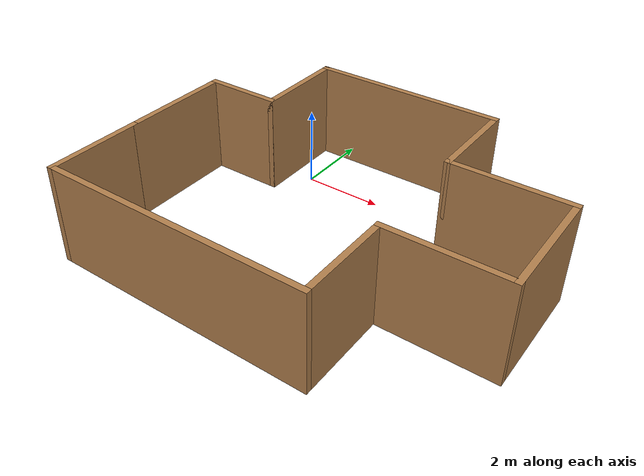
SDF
<?xml version='1.0'?>
<sdf version='1.7'>
  <model name='world_2'>
    <pose>2.28916 -2.23722 0 0 -0 0</pose>
    <link name='Wall_0'>
      <collision name='Wall_0_Collision'>
        <geometry>
          <box>
            <size>3 0.15 2.5</size>
          </box>
        </geometry>
        <pose>0 0 1.25 0 -0 0</pose>
      </collision>
      <visual name='Wall_0_Visual'>
        <pose>0 0 1.25 0 -0 0</pose>
        <geometry>
          <box>
            <size>3 0.15 2.5</size>
          </box>
        </geometry>
        <material>
          <script>
            <uri>file://media/materials/scripts/gazebo.material</uri>
            <name>Gazebo/Wood</name>
          </script>
          <ambient>1 1 1 1</ambient>
        </material>
        <meta>
          <layer>0</layer>
        </meta>
      </visual>
      <pose>-4.775 0 0 0 -0 1.5708</pose>
    </link>
    <link name='Wall_1'>
      <collision name='Wall_1_Collision'>
        <geometry>
          <box>
            <size>2 0.15 2.5</size>
          </box>
        </geometry>
        <pose>0 0 1.25 0 -0 0</pose>
      </collision>
      <visual name='Wall_1_Visual'>
        <pose>0 0 1.25 0 -0 0</pose>
        <geometry>
          <box>
            <size>2 0.15 2.5</size>
          </box>
        </geometry>
        <material>
          <script>
            <uri>file://media/materials/scripts/gazebo.material</uri>
            <name>Gazebo/Wood</name>
          </script>
          <ambient>1 1 1 1</ambient>
        </material>
        <meta>
          <layer>0</layer>
        </meta>
      </visual>
      <pose>-3.85 1.425 0 0 -0 0</pose>
    </link>
    <link name='Wall_10'>
      <collision name='Wall_10_Collision'>
        <geometry>
          <box>
            <size>6.75 0.15 2.5</size>
          </box>
        </geometry>
        <pose>0 0 1.25 0 -0 0</pose>
      </collision>
      <visual name='Wall_10_Visual'>
        <pose>0 0 1.25 0 -0 0</pose>
        <geometry>
          <box>
            <size>6.75 0.15 2.5</size>
          </box>
        </geometry>
        <material>
          <script>
            <uri>file://media/materials/scripts/gazebo.material</uri>
            <name>Gazebo/Wood</name>
          </script>
          <ambient>1 1 1 1</ambient>
        </material>
        <meta>
          <layer>0</layer>
        </meta>
      </visual>
      <pose>-1.375 -3.775 0 0 -0 3.14159</pose>
    </link>
    <link name='Wall_12'>
      <collision name='Wall_12_Collision'>
        <geometry>
          <box>
            <size>2.5 0.15 2.5</size>
          </box>
        </geometry>
        <pose>0 0 1.25 0 -0 0</pose>
      </collision>
      <visual name='Wall_12_Visual'>
        <pose>0 0 1.25 0 -0 0</pose>
        <geometry>
          <box>
            <size>2.5 0.15 2.5</size>
          </box>
        </geometry>
        <material>
          <script>
            <uri>file://media/materials/scripts/gazebo.material</uri>
            <name>Gazebo/Wood</name>
          </script>
          <ambient>1 1 1 1</ambient>
        </material>
        <meta>
          <layer>0</layer>
        </meta>
      </visual>
      <pose>-4.775 -2.6 0 0 -0 -1.5708</pose>
    </link>
    <link name='Wall_2'>
      <collision name='Wall_2_Collision'>
        <geometry>
          <box>
            <size>2.5 0.15 2.5</size>
          </box>
        </geometry>
        <pose>0 0 1.25 0 -0 0</pose>
      </collision>
      <visual name='Wall_2_Visual'>
        <pose>0 0 1.25 0 -0 0</pose>
        <geometry>
          <box>
            <size>2.5 0.15 2.5</size>
          </box>
        </geometry>
        <material>
          <script>
            <uri>file://media/materials/scripts/gazebo.material</uri>
            <name>Gazebo/Wood</name>
          </script>
          <ambient>1 1 1 1</ambient>
        </material>
        <meta>
          <layer>0</layer>
        </meta>
      </visual>
      <pose>-2.925 2.6 0 0 -0 1.5708</pose>
    </link>
    <link name='Wall_3'>
      <collision name='Wall_3_Collision'>
        <geometry>
          <box>
            <size>5 0.15 2.5</size>
          </box>
        </geometry>
        <pose>0 0 1.25 0 -0 0</pose>
      </collision>
      <visual name='Wall_3_Visual'>
        <pose>0 0 1.25 0 -0 0</pose>
        <geometry>
          <box>
            <size>5 0.15 2.5</size>
          </box>
        </geometry>
        <material>
          <script>
            <uri>file://media/materials/scripts/gazebo.material</uri>
            <name>Gazebo/Wood</name>
          </script>
          <ambient>1 1 1 1</ambient>
        </material>
        <meta>
          <layer>0</layer>
        </meta>
      </visual>
      <pose>-0.5 3.775 0 0 -0 0</pose>
    </link>
    <link name='Wall_4'>
      <collision name='Wall_4_Collision'>
        <geometry>
          <box>
            <size>2.5 0.15 2.5</size>
          </box>
        </geometry>
        <pose>0 0 1.25 0 -0 0</pose>
      </collision>
      <visual name='Wall_4_Visual'>
        <pose>0 0 1.25 0 -0 0</pose>
        <geometry>
          <box>
            <size>2.5 0.15 2.5</size>
          </box>
        </geometry>
        <material>
          <script>
            <uri>file://media/materials/scripts/gazebo.material</uri>
            <name>Gazebo/Wood</name>
          </script>
          <ambient>1 1 1 1</ambient>
        </material>
        <meta>
          <layer>0</layer>
        </meta>
      </visual>
      <pose>1.925 2.6 0 0 -0 -1.5708</pose>
    </link>
    <link name='Wall_5'>
      <collision name='Wall_5_Collision'>
        <geometry>
          <box>
            <size>3 0.15 2.5</size>
          </box>
        </geometry>
        <pose>0 0 1.25 0 -0 0</pose>
      </collision>
      <visual name='Wall_5_Visual'>
        <pose>0 0 1.25 0 -0 0</pose>
        <geometry>
          <box>
            <size>3 0.15 2.5</size>
          </box>
        </geometry>
        <material>
          <script>
            <uri>file://media/materials/scripts/gazebo.material</uri>
            <name>Gazebo/Wood</name>
          </script>
          <ambient>1 1 1 1</ambient>
        </material>
        <meta>
          <layer>0</layer>
        </meta>
      </visual>
      <pose>3.35 1.425 0 0 -0 0</pose>
    </link>
    <link name='Wall_6'>
      <collision name='Wall_6_Collision'>
        <geometry>
          <box>
            <size>3 0.15 2.5</size>
          </box>
        </geometry>
        <pose>0 0 1.25 0 -0 0</pose>
      </collision>
      <visual name='Wall_6_Visual'>
        <pose>0 0 1.25 0 -0 0</pose>
        <geometry>
          <box>
            <size>3 0.15 2.5</size>
          </box>
        </geometry>
        <material>
          <script>
            <uri>file://media/materials/scripts/gazebo.material</uri>
            <name>Gazebo/Wood</name>
          </script>
          <ambient>1 1 1 1</ambient>
        </material>
        <meta>
          <layer>0</layer>
        </meta>
      </visual>
      <pose>4.775 0 0 0 -0 -1.5708</pose>
    </link>
    <link name='Wall_8'>
      <collision name='Wall_8_Collision'>
        <geometry>
          <box>
            <size>3 0.15 2.5</size>
          </box>
        </geometry>
        <pose>0 0 1.25 0 -0 0</pose>
      </collision>
      <visual name='Wall_8_Visual'>
        <pose>0 0 1.25 0 -0 0</pose>
        <geometry>
          <box>
            <size>3 0.15 2.5</size>
          </box>
        </geometry>
        <material>
          <script>
            <uri>file://media/materials/scripts/gazebo.material</uri>
            <name>Gazebo/Wood</name>
          </script>
          <ambient>1 1 1 1</ambient>
        </material>
        <meta>
          <layer>0</layer>
        </meta>
      </visual>
      <pose>3.35 -1.425 0 0 -0 3.14159</pose>
    </link>
    <link name='Wall_9'>
      <collision name='Wall_9_Collision'>
        <geometry>
          <box>
            <size>2.5 0.15 2.5</size>
          </box>
        </geometry>
        <pose>0 0 1.25 0 -0 0</pose>
      </collision>
      <visual name='Wall_9_Visual'>
        <pose>0 0 1.25 0 -0 0</pose>
        <geometry>
          <box>
            <size>2.5 0.15 2.5</size>
          </box>
        </geometry>
        <material>
          <script>
            <uri>file://media/materials/scripts/gazebo.material</uri>
            <name>Gazebo/Wood</name>
          </script>
          <ambient>1 1 1 1</ambient>
        </material>
        <meta>
          <layer>0</layer>
        </meta>
      </visual>
      <pose>1.925 -2.6 0 0 -0 -1.5708</pose>
    </link>
    <static>1</static>
  </model>
</sdf>
